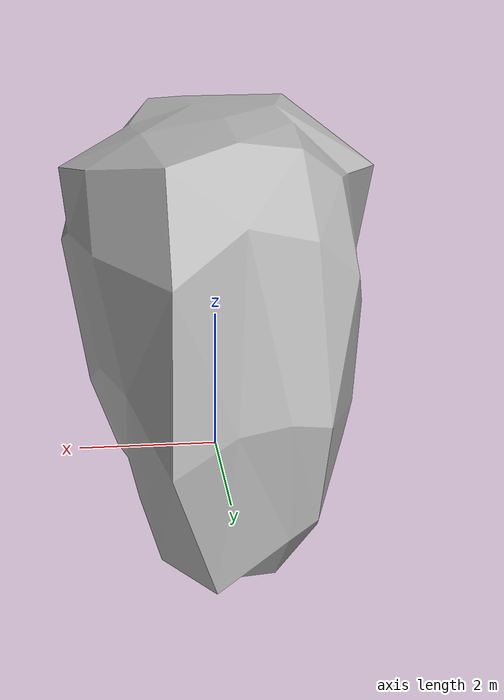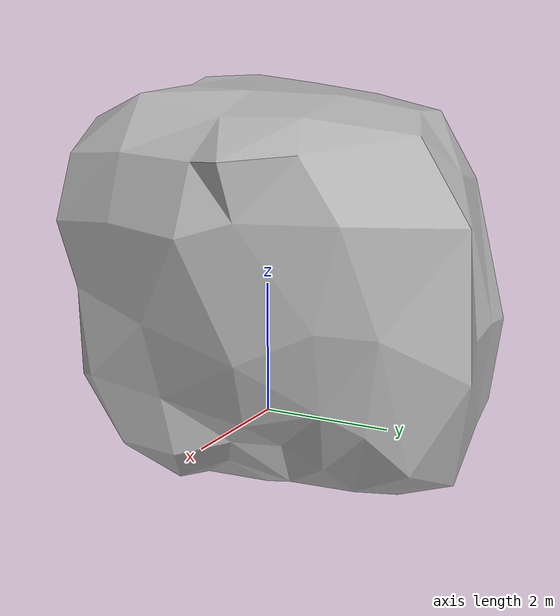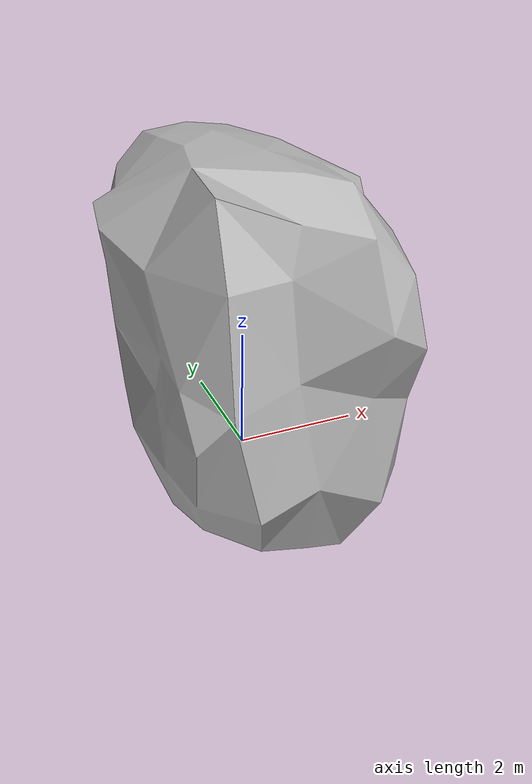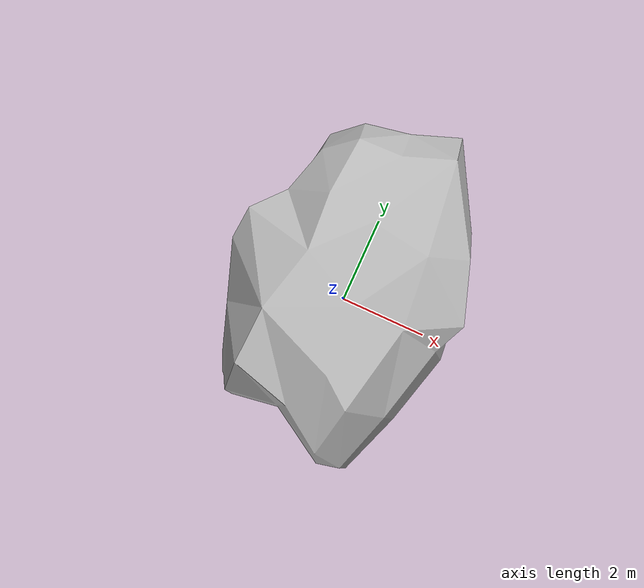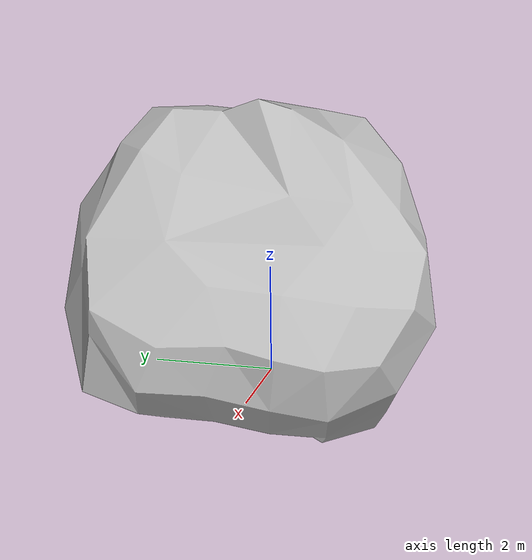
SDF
<sdf version="1.7">
<model name="rock2">
    <static>true</static>
    <link name="link">
        <pose>0 0 0 0 0 0</pose>
        <collision name="collision">
            <geometry>
              <mesh>
                <uri>model://rock2/meshes/Rock2.dae</uri>
              </mesh>
            </geometry>
        </collision>
        <visual name="visual">
            <cast_shadows>false</cast_shadows>
            <geometry>
                <mesh>
                  <uri>model://rock2/meshes/Rock2.dae</uri>
                  <scale>1 1 1</scale>
                </mesh>
            </geometry>
        </visual>
    </link>
</model>
</sdf>
